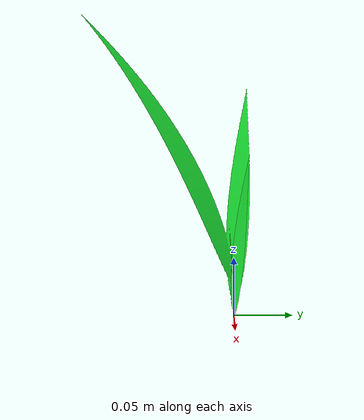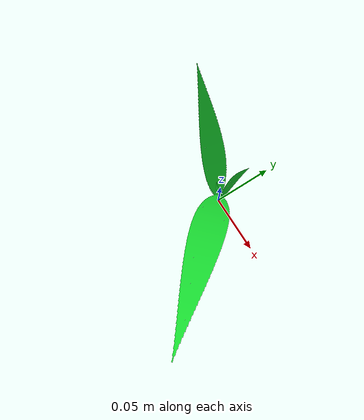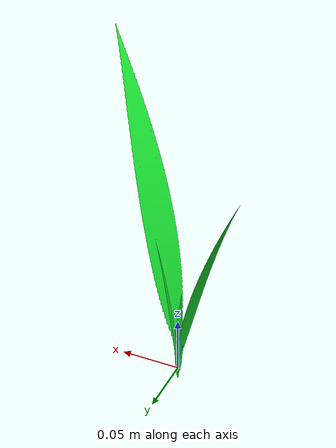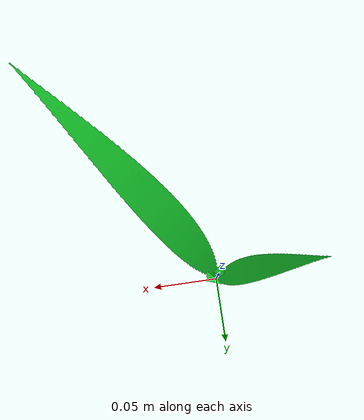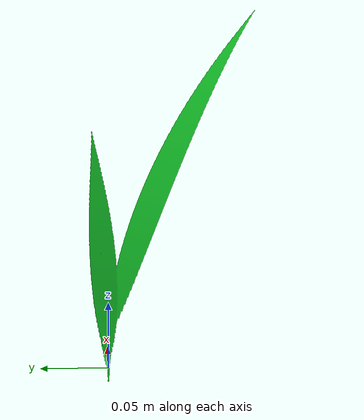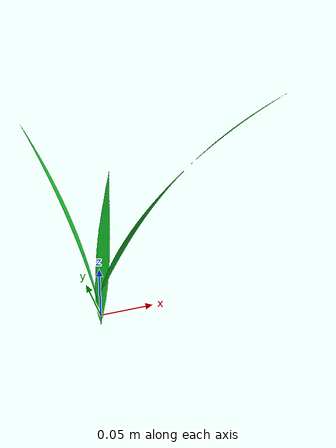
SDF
<?xml version="1.0"?>
<sdf version="1.6">
    <model name="maize_001_day_045">
        <pose frame=" ">0 0 0 0 0 0</pose>
        <link name="link">
            <inertial>
                <pose>0 0 0.01 0 0 0</pose>
                <mass>0.0023292177236993858</mass>
                <inertia>
                    <ixx>0.0033416667</ixx>
                    <ixy>0</ixy>
                    <ixz>0</ixz>
                    <iyy>0.0033416667</iyy>
                    <iyz>0</iyz>
                    <izz>0.000016666667</izz>
                </inertia>
                <pose>0 0 0.1 0 0 0</pose>
            </inertial>
            <collision name="collision">
                <pose>0 0 0.00014891863975208253 0 0 0</pose>
                <geometry>
                    <box>
                        <size>0.02 0.02 0.00029783727950416505</size>
                    </box>
                </geometry>
                <max_contacts>10</max_contacts>
                <surface>
                    <contact>
                        <ode />
                    </contact>
                    <bounce />
                    <friction>
                        <ode>
                            <mu>10</mu>
                            <mu2>10</mu2>
                        </ode>
                    </friction>
                </surface>
            </collision>
            <visual name="visual">
                <pose>0 0 0 1.57079632679 0 0</pose>
                <geometry>
                    <mesh>
                        <uri>model://maize_001_day_045/meshes/maize_001_day_045.dae</uri>
                        <scale>1 1 1</scale>
                    </mesh>
                </geometry>
                <material>
                    <ambient>0.1 0.9 0.1 1</ambient>
                    <diffuse>0.1 0.9 0.2 1</diffuse>
                    <specular>0 0.5 0 0</specular>
                    <emissive>0 0 0 1</emissive>
                </material>
            </visual>
            <self_collide>0</self_collide>
            <enable_wind>0</enable_wind>
            <kinematic>0</kinematic>
        </link>
    </model>
</sdf>
